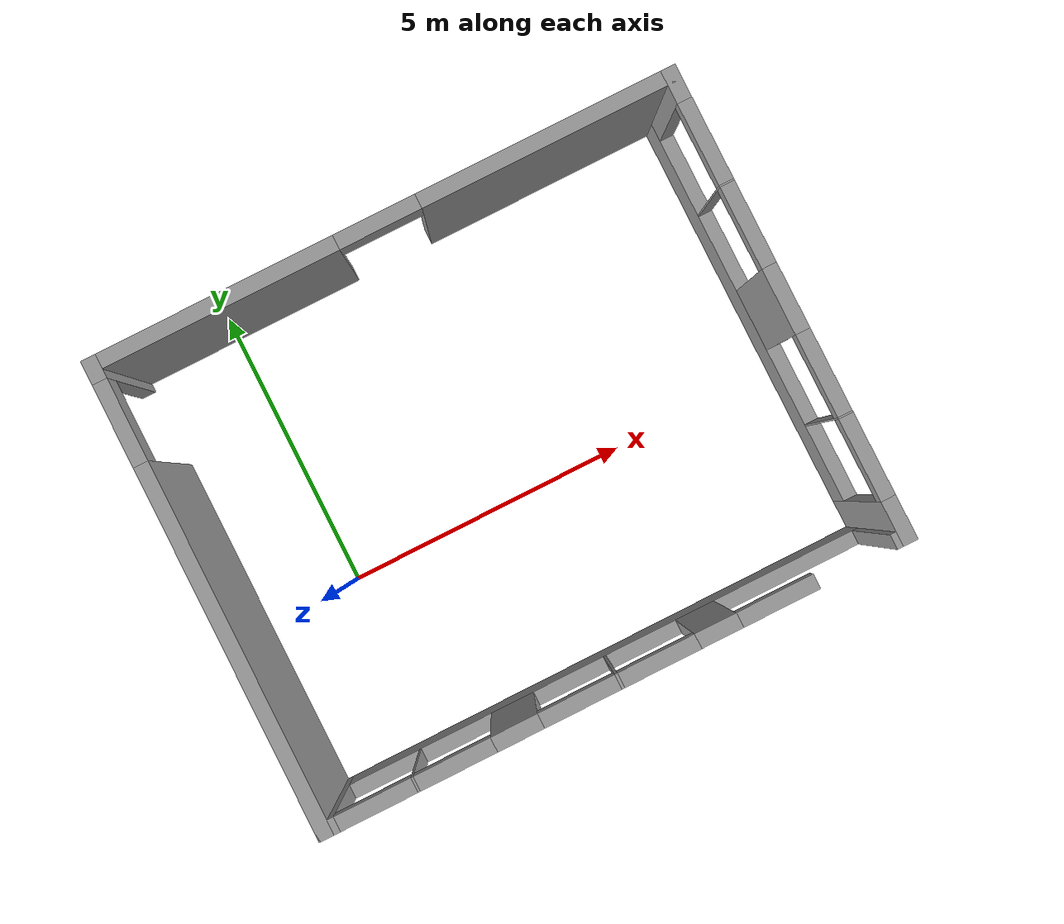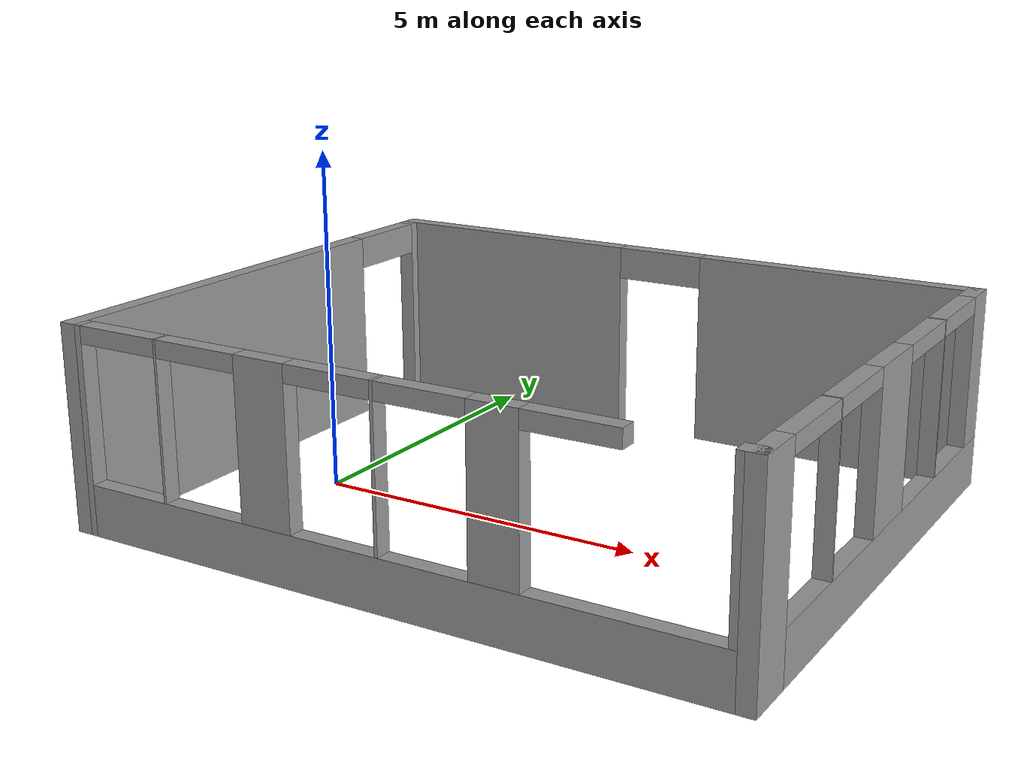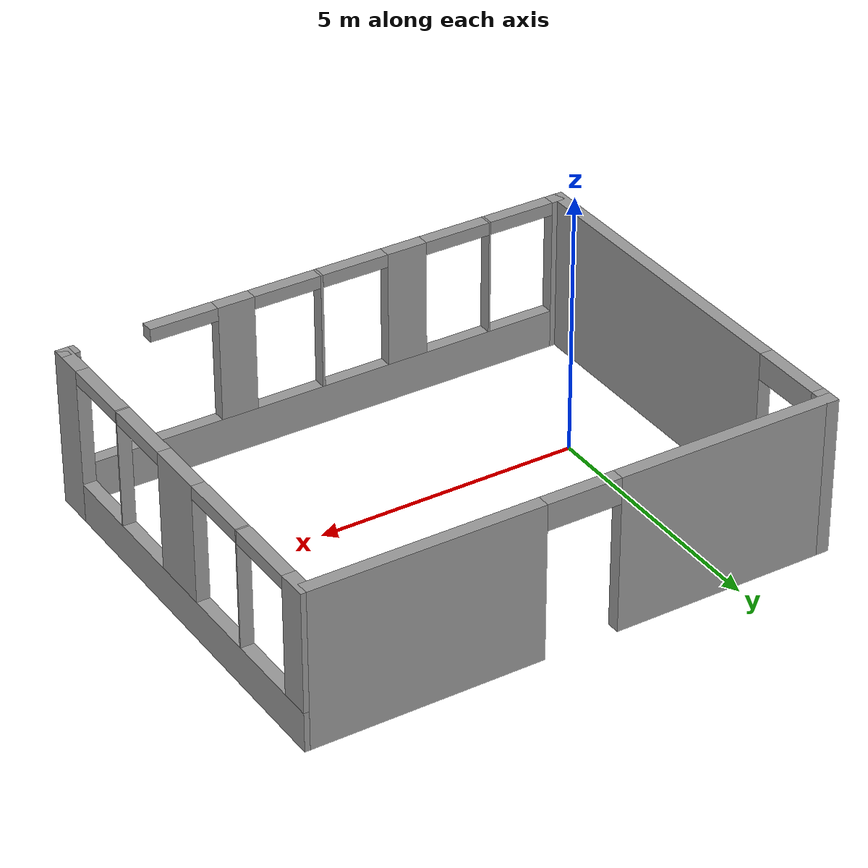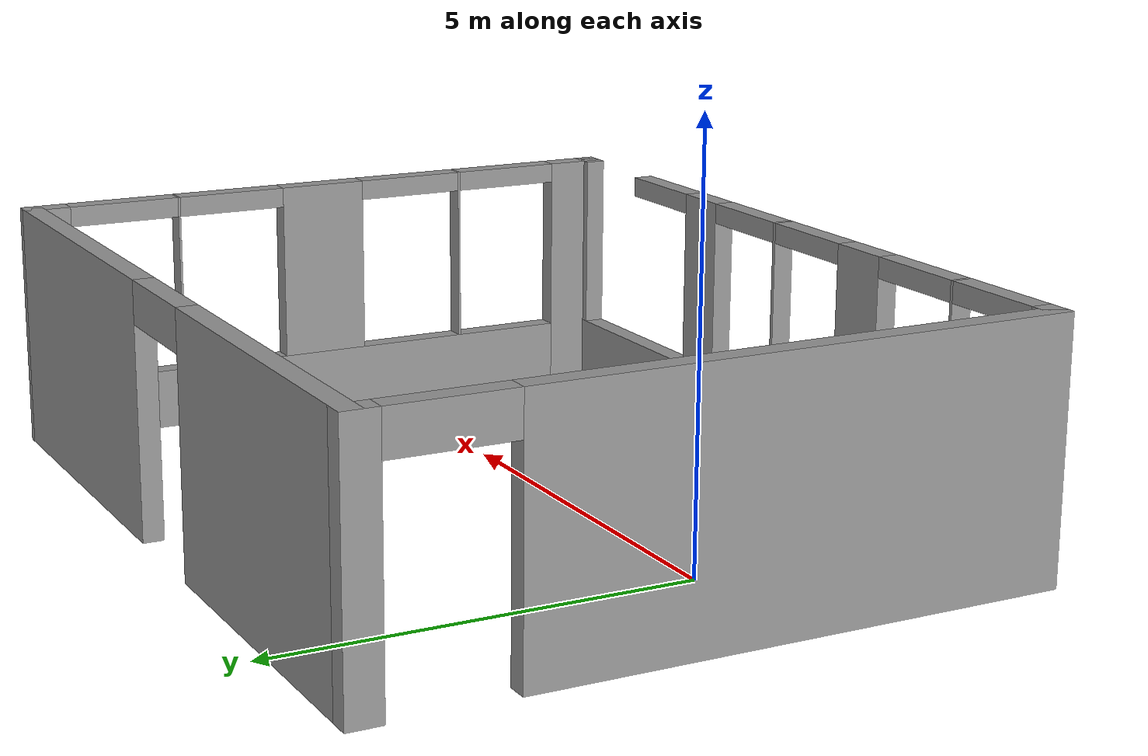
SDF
<?xml version='1.0'?>
<sdf version='1.6'>
  <model name='PiantaLabAlfa'>
    <pose frame=''>3.107 0.806004 0 0 -0 0</pose>
    <link name='Wall_26'>
      <pose frame=''>-0.049888 3.925 0 0 0 -3.14159</pose>
      <visual name='Wall_26_Visual_0'>
        <pose frame=''>-2.83303 0 1.5 0 -0 0</pose>
        <geometry>
          <box>
            <size>4.33394 0.25 3</size>
          </box>
        </geometry>
        <material>
          <script>
            <uri>file://media/materials/scripts/gazebo.material</uri>
            <name>Gazebo/Grey</name>
          </script>
          <ambient>1 1 1 1</ambient>
        </material>
        <meta>
          <layer>0</layer>
        </meta>
      </visual>
      <collision name='Wall_26_Collision_0'>
        <geometry>
          <box>
            <size>4.33394 0.25 3</size>
          </box>
        </geometry>
        <pose frame=''>-2.83303 0 1.5 0 -0 0</pose>
      </collision>
      <visual name='Wall_26_Visual_1'>
        <pose frame=''>2.86697 0 1.5 0 -0 0</pose>
        <geometry>
          <box>
            <size>4.26606 0.25 3</size>
          </box>
        </geometry>
        <material>
          <script>
            <uri>file://media/materials/scripts/gazebo.material</uri>
            <name>Gazebo/Grey</name>
          </script>
          <ambient>1 1 1 1</ambient>
        </material>
        <meta>
          <layer>0</layer>
        </meta>
      </visual>
      <collision name='Wall_26_Collision_1'>
        <geometry>
          <box>
            <size>4.26606 0.25 3</size>
          </box>
        </geometry>
        <pose frame=''>2.86697 0 1.5 0 -0 0</pose>
      </collision>
      <visual name='Wall_26_Visual_2'>
        <pose frame=''>0.033943 0 2.75 0 -0 0</pose>
        <geometry>
          <box>
            <size>1.4 0.25 0.5</size>
          </box>
        </geometry>
        <material>
          <script>
            <uri>file://media/materials/scripts/gazebo.material</uri>
            <name>Gazebo/Grey</name>
          </script>
          <ambient>1 1 1 1</ambient>
        </material>
        <meta>
          <layer>0</layer>
        </meta>
      </visual>
      <collision name='Wall_26_Collision_2'>
        <geometry>
          <box>
            <size>1.4 0.25 0.5</size>
          </box>
        </geometry>
        <pose frame=''>0.033943 0 2.75 0 -0 0</pose>
      </collision>
    </link>
    <link name='Wall_30'>
      <pose frame=''>-4.925 -4e-06 0 0 0 -1.5708</pose>
      <visual name='Wall_30_Visual_0'>
        <pose frame=''>-3.84628 0 1.5 0 -0 0</pose>
        <geometry>
          <box>
            <size>0.407436 0.25 3</size>
          </box>
        </geometry>
        <material>
          <script>
            <uri>file://media/materials/scripts/gazebo.material</uri>
            <name>Gazebo/Grey</name>
          </script>
          <ambient>1 1 1 1</ambient>
        </material>
        <meta>
          <layer>0</layer>
        </meta>
      </visual>
      <collision name='Wall_30_Collision_0'>
        <geometry>
          <box>
            <size>0.407436 0.25 3</size>
          </box>
        </geometry>
        <pose frame=''>-3.84628 0 1.5 0 -0 0</pose>
      </collision>
      <visual name='Wall_30_Visual_1'>
        <pose frame=''>0.903718 0 1.5 0 -0 0</pose>
        <geometry>
          <box>
            <size>6.29256 0.25 3</size>
          </box>
        </geometry>
        <material>
          <script>
            <uri>file://media/materials/scripts/gazebo.material</uri>
            <name>Gazebo/Grey</name>
          </script>
          <ambient>1 1 1 1</ambient>
        </material>
        <meta>
          <layer>0</layer>
        </meta>
      </visual>
      <collision name='Wall_30_Collision_1'>
        <geometry>
          <box>
            <size>6.29256 0.25 3</size>
          </box>
        </geometry>
        <pose frame=''>0.903718 0 1.5 0 -0 0</pose>
      </collision>
      <visual name='Wall_30_Visual_2'>
        <pose frame=''>-2.94256 0 2.75 0 -0 0</pose>
        <geometry>
          <box>
            <size>1.4 0.25 0.5</size>
          </box>
        </geometry>
        <material>
          <script>
            <uri>file://media/materials/scripts/gazebo.material</uri>
            <name>Gazebo/Grey</name>
          </script>
          <ambient>1 1 1 1</ambient>
        </material>
        <meta>
          <layer>0</layer>
        </meta>
      </visual>
      <collision name='Wall_30_Collision_2'>
        <geometry>
          <box>
            <size>1.4 0.25 0.5</size>
          </box>
        </geometry>
        <pose frame=''>-2.94256 0 2.75 0 -0 0</pose>
      </collision>
    </link>
    <link name='Wall_31'>
      <pose frame=''>0 -3.925 0 0 -0 0</pose>
      <visual name='Wall_31_Visual_0'>
        <pose frame=''>-4.87192 0 1.5 0 -0 0</pose>
        <geometry>
          <box>
            <size>0.356169 0.25 3</size>
          </box>
        </geometry>
        <material>
          <script>
            <uri>file://media/materials/scripts/gazebo.material</uri>
            <name>Gazebo/Grey</name>
          </script>
          <ambient>1 1 1 1</ambient>
        </material>
        <meta>
          <layer>0</layer>
        </meta>
      </visual>
      <collision name='Wall_31_Collision_0'>
        <geometry>
          <box>
            <size>0.356169 0.25 3</size>
          </box>
        </geometry>
        <pose frame=''>-4.87192 0 1.5 0 -0 0</pose>
      </collision>
      <visual name='Wall_31_Visual_1'>
        <pose frame=''>0.178085 0 0.375 0 -0 0</pose>
        <geometry>
          <box>
            <size>9.74383 0.25 0.75</size>
          </box>
        </geometry>
        <material>
          <script>
            <uri>file://media/materials/scripts/gazebo.material</uri>
            <name>Gazebo/Grey</name>
          </script>
          <ambient>1 1 1 1</ambient>
        </material>
        <meta>
          <layer>0</layer>
        </meta>
      </visual>
      <collision name='Wall_31_Collision_1'>
        <geometry>
          <box>
            <size>9.74383 0.25 0.75</size>
          </box>
        </geometry>
        <pose frame=''>0.178085 0 0.375 0 -0 0</pose>
      </collision>
      <visual name='Wall_31_Visual_2'>
        <pose frame=''>-3.37383 0 1.875 0 -0 0</pose>
        <geometry>
          <box>
            <size>0.04 0.25 2.25</size>
          </box>
        </geometry>
        <material>
          <script>
            <uri>file://media/materials/scripts/gazebo.material</uri>
            <name>Gazebo/Grey</name>
          </script>
          <ambient>1 1 1 1</ambient>
        </material>
        <meta>
          <layer>0</layer>
        </meta>
      </visual>
      <collision name='Wall_31_Collision_2'>
        <geometry>
          <box>
            <size>0.04 0.25 2.25</size>
          </box>
        </geometry>
        <pose frame=''>-3.37383 0 1.875 0 -0 0</pose>
      </collision>
      <visual name='Wall_31_Visual_3'>
        <pose frame=''>-1.65883 0 1.875 0 -0 0</pose>
        <geometry>
          <box>
            <size>0.79 0.25 2.25</size>
          </box>
        </geometry>
        <material>
          <script>
            <uri>file://media/materials/scripts/gazebo.material</uri>
            <name>Gazebo/Grey</name>
          </script>
          <ambient>1 1 1 1</ambient>
        </material>
        <meta>
          <layer>0</layer>
        </meta>
      </visual>
      <collision name='Wall_31_Collision_3'>
        <geometry>
          <box>
            <size>0.79 0.25 2.25</size>
          </box>
        </geometry>
        <pose frame=''>-1.65883 0 1.875 0 -0 0</pose>
      </collision>
      <visual name='Wall_31_Visual_4'>
        <pose frame=''>0.061169 0 1.875 0 -0 0</pose>
        <geometry>
          <box>
            <size>0.05 0.25 2.25</size>
          </box>
        </geometry>
        <material>
          <script>
            <uri>file://media/materials/scripts/gazebo.material</uri>
            <name>Gazebo/Grey</name>
          </script>
          <ambient>1 1 1 1</ambient>
        </material>
        <meta>
          <layer>0</layer>
        </meta>
      </visual>
      <collision name='Wall_31_Collision_4'>
        <geometry>
          <box>
            <size>0.05 0.25 2.25</size>
          </box>
        </geometry>
        <pose frame=''>0.061169 0 1.875 0 -0 0</pose>
      </collision>
      <visual name='Wall_31_Visual_5'>
        <pose frame=''>1.74117 0 1.875 0 -0 0</pose>
        <geometry>
          <box>
            <size>0.71 0.25 2.25</size>
          </box>
        </geometry>
        <material>
          <script>
            <uri>file://media/materials/scripts/gazebo.material</uri>
            <name>Gazebo/Grey</name>
          </script>
          <ambient>1 1 1 1</ambient>
        </material>
        <meta>
          <layer>0</layer>
        </meta>
      </visual>
      <collision name='Wall_31_Collision_5'>
        <geometry>
          <box>
            <size>0.71 0.25 2.25</size>
          </box>
        </geometry>
        <pose frame=''>1.74117 0 1.875 0 -0 0</pose>
      </collision>
      <visual name='Wall_31_Visual_6'>
        <pose frame=''>4.87308 0 1.875 0 -0 0</pose>
        <geometry>
          <box>
            <size>0.353831 0.25 2.25</size>
          </box>
        </geometry>
        <material>
          <script>
            <uri>file://media/materials/scripts/gazebo.material</uri>
            <name>Gazebo/Grey</name>
          </script>
          <ambient>1 1 1 1</ambient>
        </material>
        <meta>
          <layer>0</layer>
        </meta>
      </visual>
      <collision name='Wall_31_Collision_6'>
        <geometry>
          <box>
            <size>0.353831 0.25 2.25</size>
          </box>
        </geometry>
        <pose frame=''>4.87308 0 1.875 0 -0 0</pose>
      </collision>
      <visual name='Wall_31_Visual_7'>
        <pose frame=''>-4.04383 0 2.875 0 -0 0</pose>
        <geometry>
          <box>
            <size>1.3 0.25 0.25</size>
          </box>
        </geometry>
        <material>
          <script>
            <uri>file://media/materials/scripts/gazebo.material</uri>
            <name>Gazebo/Grey</name>
          </script>
          <ambient>1 1 1 1</ambient>
        </material>
        <meta>
          <layer>0</layer>
        </meta>
      </visual>
      <collision name='Wall_31_Collision_7'>
        <geometry>
          <box>
            <size>1.3 0.25 0.25</size>
          </box>
        </geometry>
        <pose frame=''>-4.04383 0 2.875 0 -0 0</pose>
      </collision>
      <visual name='Wall_31_Visual_8'>
        <pose frame=''>-2.70383 0 2.875 0 -0 0</pose>
        <geometry>
          <box>
            <size>1.3 0.25 0.25</size>
          </box>
        </geometry>
        <material>
          <script>
            <uri>file://media/materials/scripts/gazebo.material</uri>
            <name>Gazebo/Grey</name>
          </script>
          <ambient>1 1 1 1</ambient>
        </material>
        <meta>
          <layer>0</layer>
        </meta>
      </visual>
      <collision name='Wall_31_Collision_8'>
        <geometry>
          <box>
            <size>1.3 0.25 0.25</size>
          </box>
        </geometry>
        <pose frame=''>-2.70383 0 2.875 0 -0 0</pose>
      </collision>
      <visual name='Wall_31_Visual_9'>
        <pose frame=''>-0.613831 0 2.875 0 -0 0</pose>
        <geometry>
          <box>
            <size>1.3 0.25 0.25</size>
          </box>
        </geometry>
        <material>
          <script>
            <uri>file://media/materials/scripts/gazebo.material</uri>
            <name>Gazebo/Grey</name>
          </script>
          <ambient>1 1 1 1</ambient>
        </material>
        <meta>
          <layer>0</layer>
        </meta>
      </visual>
      <collision name='Wall_31_Collision_9'>
        <geometry>
          <box>
            <size>1.3 0.25 0.25</size>
          </box>
        </geometry>
        <pose frame=''>-0.613831 0 2.875 0 -0 0</pose>
      </collision>
      <visual name='Wall_31_Visual_10'>
        <pose frame=''>0.736169 0 2.875 0 -0 0</pose>
        <geometry>
          <box>
            <size>1.3 0.25 0.25</size>
          </box>
        </geometry>
        <material>
          <script>
            <uri>file://media/materials/scripts/gazebo.material</uri>
            <name>Gazebo/Grey</name>
          </script>
          <ambient>1 1 1 1</ambient>
        </material>
        <meta>
          <layer>0</layer>
        </meta>
      </visual>
      <collision name='Wall_31_Collision_10'>
        <geometry>
          <box>
            <size>1.3 0.25 0.25</size>
          </box>
        </geometry>
        <pose frame=''>0.736169 0 2.875 0 -0 0</pose>
      </collision>
      <visual name='Wall_31_Visual_11'>
        <pose frame=''>2.74617 0 2.875 0 -0 0</pose>
        <geometry>
          <box>
            <size>1.3 0.25 0.25</size>
          </box>
        </geometry>
        <material>
          <script>
            <uri>file://media/materials/scripts/gazebo.material</uri>
            <name>Gazebo/Grey</name>
          </script>
          <ambient>1 1 1 1</ambient>
        </material>
        <meta>
          <layer>0</layer>
        </meta>
      </visual>
      <collision name='Wall_31_Collision_11'>
        <geometry>
          <box>
            <size>1.3 0.25 0.25</size>
          </box>
        </geometry>
        <pose frame=''>2.74617 0 2.875 0 -0 0</pose>
      </collision>
    </link>
    <link name='Wall_32'>
      <pose frame=''>4.925 -4e-06 0 0 -0 1.5708</pose>
      <visual name='Wall_32_Visual_0'>
        <pose frame=''>-3.67372 0 1.5 0 -0 0</pose>
        <geometry>
          <box>
            <size>0.75256 0.25 3</size>
          </box>
        </geometry>
        <material>
          <script>
            <uri>file://media/materials/scripts/gazebo.material</uri>
            <name>Gazebo/Grey</name>
          </script>
          <ambient>1 1 1 1</ambient>
        </material>
        <meta>
          <layer>0</layer>
        </meta>
      </visual>
      <collision name='Wall_32_Collision_0'>
        <geometry>
          <box>
            <size>0.75256 0.25 3</size>
          </box>
        </geometry>
        <pose frame=''>-3.67372 0 1.5 0 -0 0</pose>
      </collision>
      <visual name='Wall_32_Visual_1'>
        <pose frame=''>0.37628 0 0.375 0 -0 0</pose>
        <geometry>
          <box>
            <size>7.34744 0.25 0.75</size>
          </box>
        </geometry>
        <material>
          <script>
            <uri>file://media/materials/scripts/gazebo.material</uri>
            <name>Gazebo/Grey</name>
          </script>
          <ambient>1 1 1 1</ambient>
        </material>
        <meta>
          <layer>0</layer>
        </meta>
      </visual>
      <collision name='Wall_32_Collision_1'>
        <geometry>
          <box>
            <size>7.34744 0.25 0.75</size>
          </box>
        </geometry>
        <pose frame=''>0.37628 0 0.375 0 -0 0</pose>
      </collision>
      <visual name='Wall_32_Visual_2'>
        <pose frame=''>-1.88244 0 1.875 0 -0 0</pose>
        <geometry>
          <box>
            <size>0.03 0.25 2.25</size>
          </box>
        </geometry>
        <material>
          <script>
            <uri>file://media/materials/scripts/gazebo.material</uri>
            <name>Gazebo/Grey</name>
          </script>
          <ambient>1 1 1 1</ambient>
        </material>
        <meta>
          <layer>0</layer>
        </meta>
      </visual>
      <collision name='Wall_32_Collision_2'>
        <geometry>
          <box>
            <size>0.03 0.25 2.25</size>
          </box>
        </geometry>
        <pose frame=''>-1.88244 0 1.875 0 -0 0</pose>
      </collision>
      <visual name='Wall_32_Visual_3'>
        <pose frame=''>0.09256 0 1.875 0 -0 0</pose>
        <geometry>
          <box>
            <size>1.12 0.25 2.25</size>
          </box>
        </geometry>
        <material>
          <script>
            <uri>file://media/materials/scripts/gazebo.material</uri>
            <name>Gazebo/Grey</name>
          </script>
          <ambient>1 1 1 1</ambient>
        </material>
        <meta>
          <layer>0</layer>
        </meta>
      </visual>
      <collision name='Wall_32_Collision_3'>
        <geometry>
          <box>
            <size>1.12 0.25 2.25</size>
          </box>
        </geometry>
        <pose frame=''>0.09256 0 1.875 0 -0 0</pose>
      </collision>
      <visual name='Wall_32_Visual_4'>
        <pose frame=''>2.06756 0 1.875 0 -0 0</pose>
        <geometry>
          <box>
            <size>0.03 0.25 2.25</size>
          </box>
        </geometry>
        <material>
          <script>
            <uri>file://media/materials/scripts/gazebo.material</uri>
            <name>Gazebo/Grey</name>
          </script>
          <ambient>1 1 1 1</ambient>
        </material>
        <meta>
          <layer>0</layer>
        </meta>
      </visual>
      <collision name='Wall_32_Collision_4'>
        <geometry>
          <box>
            <size>0.03 0.25 2.25</size>
          </box>
        </geometry>
        <pose frame=''>2.06756 0 1.875 0 -0 0</pose>
      </collision>
      <visual name='Wall_32_Visual_5'>
        <pose frame=''>3.76628 0 1.875 0 -0 0</pose>
        <geometry>
          <box>
            <size>0.56744 0.25 2.25</size>
          </box>
        </geometry>
        <material>
          <script>
            <uri>file://media/materials/scripts/gazebo.material</uri>
            <name>Gazebo/Grey</name>
          </script>
          <ambient>1 1 1 1</ambient>
        </material>
        <meta>
          <layer>0</layer>
        </meta>
      </visual>
      <collision name='Wall_32_Collision_5'>
        <geometry>
          <box>
            <size>0.56744 0.25 2.25</size>
          </box>
        </geometry>
        <pose frame=''>3.76628 0 1.875 0 -0 0</pose>
      </collision>
      <visual name='Wall_32_Visual_6'>
        <pose frame=''>-2.59744 0 2.875 0 -0 0</pose>
        <geometry>
          <box>
            <size>1.4 0.25 0.25</size>
          </box>
        </geometry>
        <material>
          <script>
            <uri>file://media/materials/scripts/gazebo.material</uri>
            <name>Gazebo/Grey</name>
          </script>
          <ambient>1 1 1 1</ambient>
        </material>
        <meta>
          <layer>0</layer>
        </meta>
      </visual>
      <collision name='Wall_32_Collision_6'>
        <geometry>
          <box>
            <size>1.4 0.25 0.25</size>
          </box>
        </geometry>
        <pose frame=''>-2.59744 0 2.875 0 -0 0</pose>
      </collision>
      <visual name='Wall_32_Visual_7'>
        <pose frame=''>-1.16744 0 2.875 0 -0 0</pose>
        <geometry>
          <box>
            <size>1.4 0.25 0.25</size>
          </box>
        </geometry>
        <material>
          <script>
            <uri>file://media/materials/scripts/gazebo.material</uri>
            <name>Gazebo/Grey</name>
          </script>
          <ambient>1 1 1 1</ambient>
        </material>
        <meta>
          <layer>0</layer>
        </meta>
      </visual>
      <collision name='Wall_32_Collision_7'>
        <geometry>
          <box>
            <size>1.4 0.25 0.25</size>
          </box>
        </geometry>
        <pose frame=''>-1.16744 0 2.875 0 -0 0</pose>
      </collision>
      <visual name='Wall_32_Visual_8'>
        <pose frame=''>1.35256 0 2.875 0 -0 0</pose>
        <geometry>
          <box>
            <size>1.4 0.25 0.25</size>
          </box>
        </geometry>
        <material>
          <script>
            <uri>file://media/materials/scripts/gazebo.material</uri>
            <name>Gazebo/Grey</name>
          </script>
          <ambient>1 1 1 1</ambient>
        </material>
        <meta>
          <layer>0</layer>
        </meta>
      </visual>
      <collision name='Wall_32_Collision_8'>
        <geometry>
          <box>
            <size>1.4 0.25 0.25</size>
          </box>
        </geometry>
        <pose frame=''>1.35256 0 2.875 0 -0 0</pose>
      </collision>
      <visual name='Wall_32_Visual_9'>
        <pose frame=''>2.78256 0 2.875 0 -0 0</pose>
        <geometry>
          <box>
            <size>1.4 0.25 0.25</size>
          </box>
        </geometry>
        <material>
          <script>
            <uri>file://media/materials/scripts/gazebo.material</uri>
            <name>Gazebo/Grey</name>
          </script>
          <ambient>1 1 1 1</ambient>
        </material>
        <meta>
          <layer>0</layer>
        </meta>
      </visual>
      <collision name='Wall_32_Collision_9'>
        <geometry>
          <box>
            <size>1.4 0.25 0.25</size>
          </box>
        </geometry>
        <pose frame=''>2.78256 0 2.875 0 -0 0</pose>
      </collision>
    </link>
    <static>1</static>
  </model>
</sdf>
